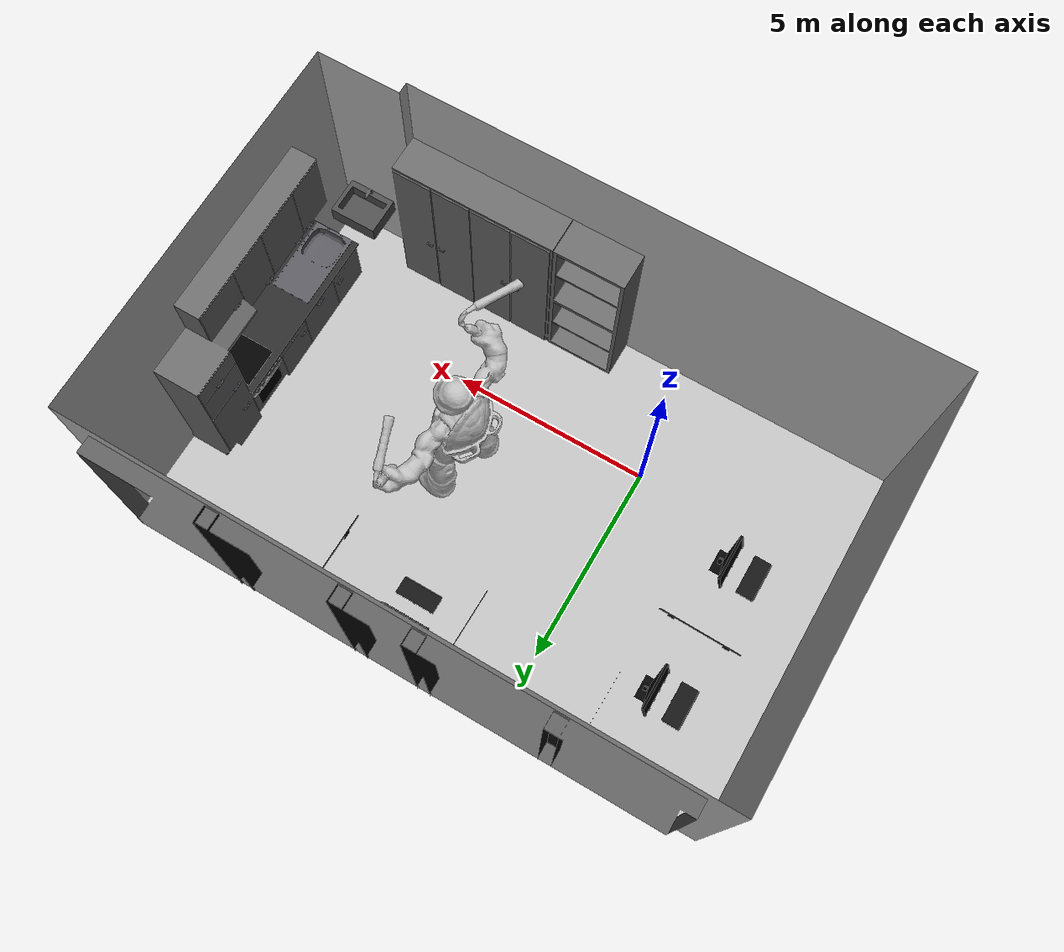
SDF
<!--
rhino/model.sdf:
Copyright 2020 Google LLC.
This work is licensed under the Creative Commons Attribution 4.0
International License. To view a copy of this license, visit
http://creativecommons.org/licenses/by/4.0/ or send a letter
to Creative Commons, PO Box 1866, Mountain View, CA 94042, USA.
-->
<?xml version="1.0" encoding="UTF-8" ?>
<sdf version="1.4">
  <world name="default">
    <scene>
      <ambient>0.5 0.5 0.5 1</ambient>
      <background>0.5 0.5 0.5 1</background>
      <shadows>false</shadows>
    </scene>
    <physics type="ode">
      <gravity>0 0 -9.81</gravity>
      <ode>
        <solver>
          <type>quick</type>
          <iters>10</iters>
          <sor>1.3</sor>
        </solver>
        <constraints>
          <cfm>0.0</cfm>
          <erp>0.2</erp>
          <contact_max_correcting_vel>10</contact_max_correcting_vel>
          <contact_surface_layer>0.001</contact_surface_layer>
        </constraints>
      </ode>
      <real_time_update_rate>500</real_time_update_rate>
      <max_step_size>0.001</max_step_size>
    </physics>

    <light type="directional" name="directional_light_1">
      <pose>0 0 20 0 0 0</pose>
      <diffuse>1 1 1 1</diffuse>
      <specular>1 1 1 1</specular>
      <attenuation>
        <range>300</range>
      </attenuation>
      <direction>1 1 -1</direction>
      <cast_shadows>false</cast_shadows>
    </light>

    <light type="directional" name="directional_light_2">
      <pose>0 0 20 0 0 0</pose>
      <diffuse>1 1 1 1</diffuse>
      <specular>1 1 1 1</specular>
      <attenuation>
        <range>300</range>
      </attenuation>
      <direction>-1 1 -1</direction>
      <cast_shadows>false</cast_shadows>
    </light>

    <light type="directional" name="directional_light_3">
      <pose>0 0 20 0 0 0</pose>
      <diffuse>1 1 1 1</diffuse>
      <specular>1 1 1 1</specular>
      <attenuation>
        <range>300</range>
      </attenuation>
      <direction>-1 -1 -1</direction>
      <cast_shadows>false</cast_shadows>
    </light>

    <light type="point" name="point_light_1">
      <pose>3.000000 3.500000 2.000000 0.000000 -0.000000 0.000000</pose>
      <diffuse>1.000000 1.000000 1.000000 1.000000</diffuse>
      <specular>0.100000 0.100000 0.100000 1.000000</specular>
      <direction>0.000000 0.000000 -1.000000</direction>
      <cast_shadows>false</cast_shadows>
    </light>

    <model name="garching_kitchen">
      <link name="garching_kitchen_link">
        <pose>4 2 -0.38 0 0 0</pose>

        <!-- EXPENSIVE COLLISION: THE WHOLE MESH  -->
        <collision name="garching_kitchen_collision">
          <geometry>
            <mesh>
              <uri>model://garching_kitchen/temp/garching_kitchen.dae</uri>
              <scale>2 2 2</scale>
            </mesh>
          </geometry>
        </collision>

        <!-- EASY COLLISION: JUST GROUND PLANE  -->

        <visual name="garching_kitchen">
          <geometry>
            <mesh>
              <uri>model://garching_kitchen/temp/garching_kitchen.dae</uri>
              <scale>2 2 2</scale>
            </mesh>
          </geometry>
          <cast_shadows>false</cast_shadows>
        </visual>

      </link>
      <static>true</static>
    </model>

    <include>
      <uri>model://rhino</uri>
			<name>rhino</name>
      <pose>4 1.5 0.013757 0 0 1.57</pose>
      <static>1</static>
    </include>

        <!-- Only one ROS interface plugin is required per world, as any other plugin can connect a Gazebo
         topic to a ROS topic (or vise versa). -->
    <plugin name="ros_interface_plugin" filename="librotors_gazebo_ros_interface_plugin.so"/>

  </world>
</sdf>

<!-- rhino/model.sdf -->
<sdf version="1.6">
  <model name="Schleich_African_Black_Rhino">
    <link name="link_0">
      <visual name="visual">
        <geometry>
          <mesh>
            <uri>meshes/model.obj</uri>
            <scale> 40 40 40 </scale>
          </mesh>
        </geometry>
      </visual>
      <collision name="collision_0">
        <geometry>
          <mesh>
            <uri>meshes/model.obj</uri>
            <scale> 40 40 40  </scale>
          </mesh>
        </geometry>
      </collision>
    </link>
  </model>
</sdf>
